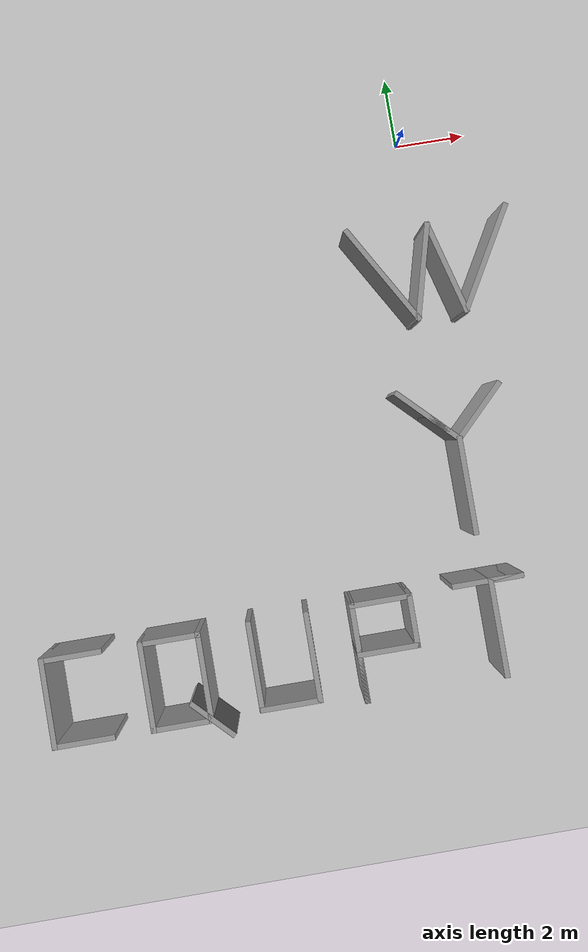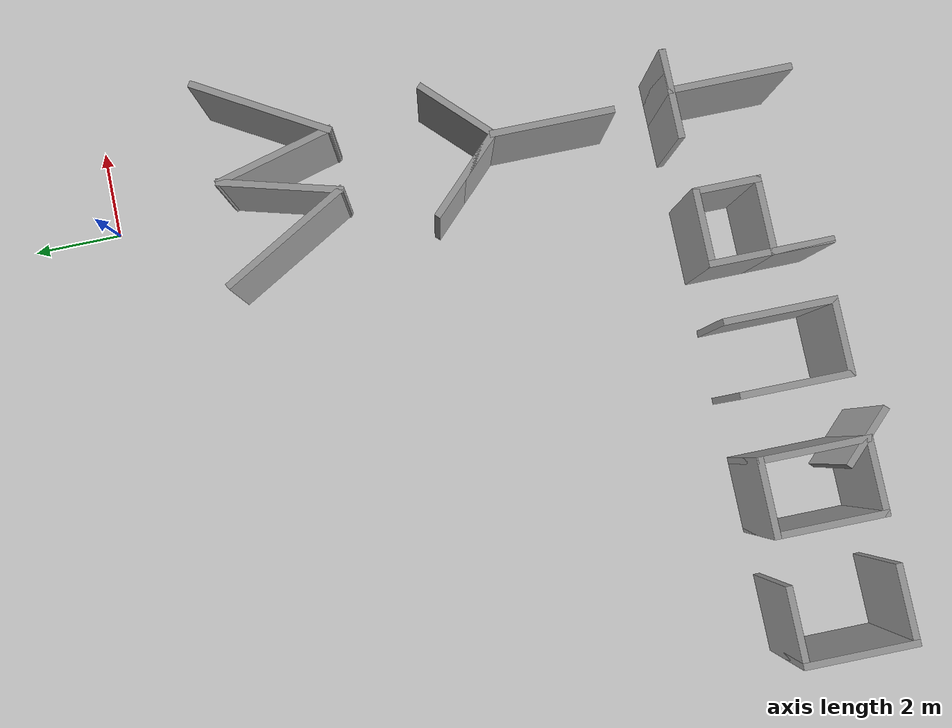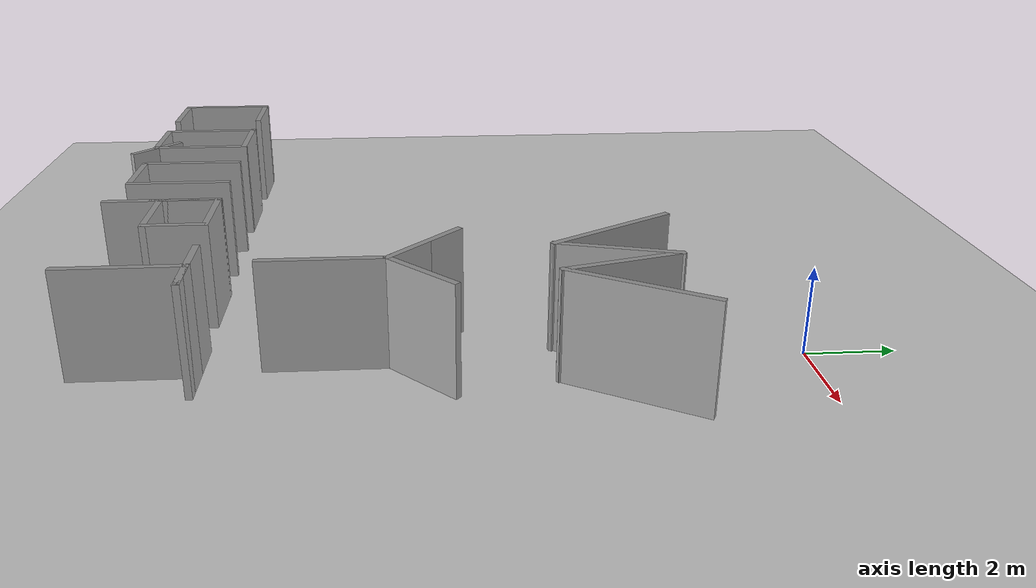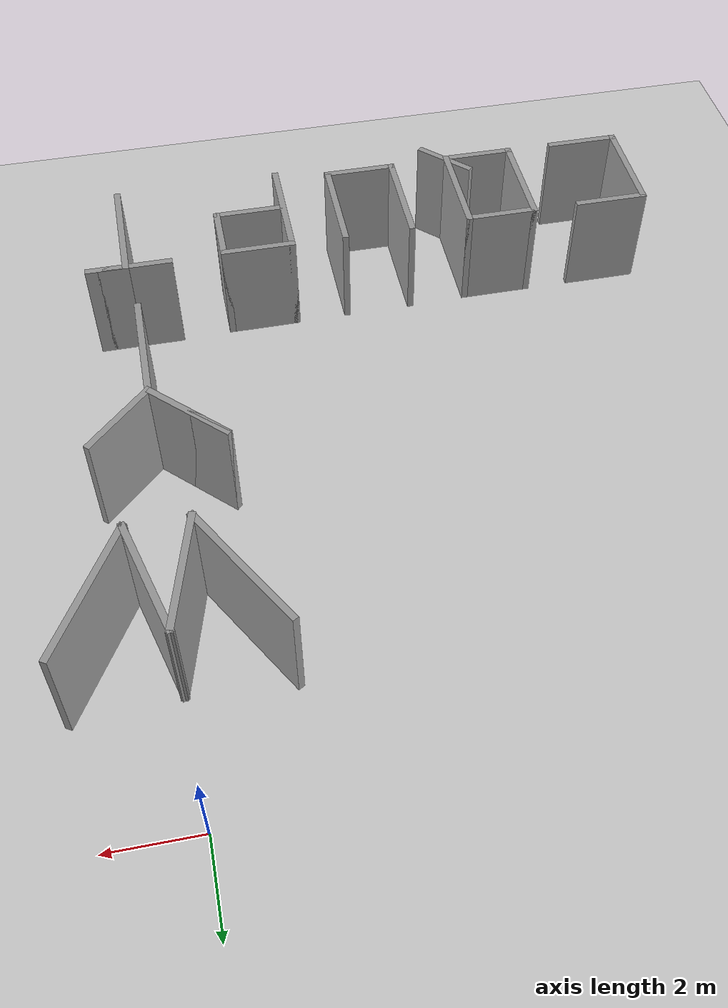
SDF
<sdf version="1.7">
 <world name="default">
  <light name="sun" type="directional">
   <pose>0 0 10 0 -0 0</pose>
   <diffuse>0.8 0.8 0.8 1</diffuse>
   <specular>0.2 0.2 0.2 1</specular>
   <attenuation>
    <range>1000</range>
    <constant>0.9</constant>
    <linear>0.01</linear>
    <quadratic>0.001</quadratic>
   </attenuation>
   <direction>-0.5 0.1 -0.9</direction>
   <spot><inner_angle>0</inner_angle><outer_angle>0</outer_angle><falloff>0</falloff></spot>
  </light>
  <model name="ground_plane">
   <static>1</static>
   <link name="link">
    <collision name="collision">
     <geometry><plane><normal>0 0 1</normal><size>100 100</size></plane></geometry>
     <surface><friction><ode><mu>100</mu><mu2>50</mu2></ode></friction></surface>
    </collision>
    <visual name="visual">
     <cast_shadows>0</cast_shadows>
     <geometry><plane><normal>0 0 1</normal><size>100 100</size></plane></geometry>
     <material>
      <script><uri>file://media/materials/scripts/gazebo.material</uri><name>Gazebo/Grey</name></script>
     </material>
    </visual>
   </link>
  </model>
  <gravity>0 0 -9.8</gravity>
  <magnetic_field>6e-06 2.3e-05 -4.2e-05</magnetic_field>
  <atmosphere type="adiabatic"/>
  <physics type="ode">
   <max_step_size>0.001</max_step_size>
   <real_time_factor>1</real_time_factor>
   <real_time_update_rate>1000</real_time_update_rate>
  </physics>
  <scene><ambient>0.4 0.4 0.4 1</ambient><background>0.7 0.7 0.7 1</background><shadows>1</shadows></scene>
  <audio><device>default</device></audio>
  <spherical_coordinates>
   <surface_model>EARTH_WGS84</surface_model>
   <latitude_deg>0</latitude_deg>
   <longitude_deg>0</longitude_deg>
   <elevation>0</elevation>
   <heading_deg>0</heading_deg>
  </spherical_coordinates>
  <model name="Untitled1">
   <pose>-4.96069 -7.90908 0 0 -0 0</pose>
   <link name="Wall_33">
    <collision name="Wall_33_Collision">
     <geometry><box><size>1.75 0.15 2.5</size></box></geometry>
     <pose>0 0 1.25 0 -0 0</pose>
    </collision>
    <visual name="Wall_33_Visual">
     <pose>0 0 1.25 0 -0 0</pose>
     <geometry><box><size>1.75 0.15 2.5</size></box></geometry>
     <material>
      <script><uri>file://media/materials/scripts/gazebo.material</uri><name>Gazebo/Grey</name></script>
      <ambient>1 1 1 1</ambient>
     </material>
     <meta><layer>0</layer></meta>
    </visual>
    <pose>-6.54323 -4.99798 0 0 -0 0</pose>
   </link>
   <link name="Wall_35">
    <collision name="Wall_35_Collision">
     <geometry><box><size>2.5 0.15 2.5</size></box></geometry>
     <pose>0 0 1.25 0 -0 0</pose>
    </collision>
    <visual name="Wall_35_Visual">
     <pose>0 0 1.25 0 -0 0</pose>
     <geometry><box><size>2.5 0.15 2.5</size></box></geometry>
     <material>
      <script><uri>file://media/materials/scripts/gazebo.material</uri><name>Gazebo/Grey</name></script>
      <ambient>1 1 1 1</ambient>
     </material>
     <meta><layer>0</layer></meta>
    </visual>
    <pose>-7.34323 -6.17298 0 0 -0 -1.5708</pose>
   </link>
   <link name="Wall_36">
    <collision name="Wall_36_Collision">
     <geometry><box><size>1.75 0.15 2.5</size></box></geometry>
     <pose>0 0 1.25 0 -0 0</pose>
    </collision>
    <visual name="Wall_36_Visual">
     <pose>0 0 1.25 0 -0 0</pose>
     <geometry><box><size>1.75 0.15 2.5</size></box></geometry>
     <material>
      <script><uri>file://media/materials/scripts/gazebo.material</uri><name>Gazebo/Grey</name></script>
      <ambient>1 1 1 1</ambient>
     </material>
     <meta><layer>0</layer></meta>
    </visual>
    <pose>-6.54323 -7.34797 0 0 -0 0</pose>
   </link>
   <link name="Wall_38">
    <collision name="Wall_38_Collision">
     <geometry><box><size>1.75 0.15 2.5</size></box></geometry>
     <pose>0 0 1.25 0 -0 0</pose>
    </collision>
    <visual name="Wall_38_Visual">
     <pose>0 0 1.25 0 -0 0</pose>
     <geometry><box><size>1.75 0.15 2.5</size></box></geometry>
     <material>
      <script><uri>file://media/materials/scripts/gazebo.material</uri><name>Gazebo/Grey</name></script>
      <ambient>1 1 1 1</ambient>
     </material>
     <meta><layer>0</layer></meta>
    </visual>
    <pose>-3.81382 -4.99798 0 0 -0 0</pose>
   </link>
   <link name="Wall_39">
    <collision name="Wall_39_Collision">
     <geometry><box><size>2.5 0.15 2.5</size></box></geometry>
     <pose>0 0 1.25 0 -0 0</pose>
    </collision>
    <visual name="Wall_39_Visual">
     <pose>0 0 1.25 0 -0 0</pose>
     <geometry><box><size>2.5 0.15 2.5</size></box></geometry>
     <material>
      <script><uri>file://media/materials/scripts/gazebo.material</uri><name>Gazebo/Grey</name></script>
      <ambient>1 1 1 1</ambient>
     </material>
     <meta><layer>0</layer></meta>
    </visual>
    <pose>-3.01382 -6.17298 0 0 -0 -1.5708</pose>
   </link>
   <link name="Wall_40">
    <collision name="Wall_40_Collision">
     <geometry><box><size>1.75 0.15 2.5</size></box></geometry>
     <pose>0 0 1.25 0 -0 0</pose>
    </collision>
    <visual name="Wall_40_Visual">
     <pose>0 0 1.25 0 -0 0</pose>
     <geometry><box><size>1.75 0.15 2.5</size></box></geometry>
     <material>
      <script><uri>file://media/materials/scripts/gazebo.material</uri><name>Gazebo/Grey</name></script>
      <ambient>1 1 1 1</ambient>
     </material>
     <meta><layer>0</layer></meta>
    </visual>
    <pose>-3.81382 -7.34797 0 0 -0 3.14159</pose>
   </link>
   <link name="Wall_41">
    <collision name="Wall_41_Collision">
     <geometry><box><size>2.5 0.15 2.5</size></box></geometry>
     <pose>0 0 1.25 0 -0 0</pose>
    </collision>
    <visual name="Wall_41_Visual">
     <pose>0 0 1.25 0 -0 0</pose>
     <geometry><box><size>2.5 0.15 2.5</size></box></geometry>
     <material>
      <script><uri>file://media/materials/scripts/gazebo.material</uri><name>Gazebo/Grey</name></script>
      <ambient>1 1 1 1</ambient>
     </material>
     <meta><layer>0</layer></meta>
    </visual>
    <pose>-4.61382 -6.17298 0 0 -0 1.5708</pose>
   </link>
   <link name="Wall_43">
    <collision name="Wall_43_Collision">
     <geometry><box><size>1.5 0.15 2.5</size></box></geometry>
     <pose>0 0 1.25 0 -0 0</pose>
    </collision>
    <visual name="Wall_43_Visual">
     <pose>0 0 1.25 0 -0 0</pose>
     <geometry><box><size>1.5 0.15 2.5</size></box></geometry>
     <material>
      <script><uri>file://media/materials/scripts/gazebo.material</uri><name>Gazebo/Grey</name></script>
      <ambient>1 1 1 1</ambient>
     </material>
     <meta><layer>0</layer></meta>
    </visual>
    <pose>-2.97999 -7.32572 0 0 -0 -0.785398</pose>
   </link>
   <link name="Wall_45">
    <collision name="Wall_45_Collision">
     <geometry><box><size>2.5 0.15 2.5</size></box></geometry>
     <pose>0 0 1.25 0 -0 0</pose>
    </collision>
    <visual name="Wall_45_Visual">
     <pose>0 0 1.25 0 -0 0</pose>
     <geometry><box><size>2.5 0.15 2.5</size></box></geometry>
     <material>
      <script><uri>file://media/materials/scripts/gazebo.material</uri><name>Gazebo/Grey</name></script>
      <ambient>1 1 1 1</ambient>
     </material>
     <meta><layer>0</layer></meta>
    </visual>
    <pose>-1.60684 -6.12671 0 0 -0 -1.5708</pose>
   </link>
   <link name="Wall_46">
    <collision name="Wall_46_Collision">
     <geometry><box><size>1.75 0.15 2.5</size></box></geometry>
     <pose>0 0 1.25 0 -0 0</pose>
    </collision>
    <visual name="Wall_46_Visual">
     <pose>0 0 1.25 0 -0 0</pose>
     <geometry><box><size>1.75 0.15 2.5</size></box></geometry>
     <material>
      <script><uri>file://media/materials/scripts/gazebo.material</uri><name>Gazebo/Grey</name></script>
      <ambient>1 1 1 1</ambient>
     </material>
     <meta><layer>0</layer></meta>
    </visual>
    <pose>-0.806841 -7.30171 0 0 -0 0</pose>
   </link>
   <link name="Wall_47">
    <collision name="Wall_47_Collision">
     <geometry><box><size>2.5 0.15 2.5</size></box></geometry>
     <pose>0 0 1.25 0 -0 0</pose>
    </collision>
    <visual name="Wall_47_Visual">
     <pose>0 0 1.25 0 -0 0</pose>
     <geometry><box><size>2.5 0.15 2.5</size></box></geometry>
     <material>
      <script><uri>file://media/materials/scripts/gazebo.material</uri><name>Gazebo/Grey</name></script>
      <ambient>1 1 1 1</ambient>
     </material>
     <meta><layer>0</layer></meta>
    </visual>
    <pose>-0.006841 -6.12671 0 0 -0 1.5708</pose>
   </link>
   <link name="Wall_49">
    <collision name="Wall_49_Collision">
     <geometry><box><size>2.75 0.15 2.5</size></box></geometry>
     <pose>0 0 1.25 0 -0 0</pose>
    </collision>
    <visual name="Wall_49_Visual">
     <pose>0 0 1.25 0 -0 0</pose>
     <geometry><box><size>2.75 0.15 2.5</size></box></geometry>
     <material>
      <script><uri>file://media/materials/scripts/gazebo.material</uri><name>Gazebo/Grey</name></script>
      <ambient>1 1 1 1</ambient>
     </material>
     <meta><layer>0</layer></meta>
    </visual>
    <pose>1.26135 -6.22858 0 0 -0 -1.5708</pose>
   </link>
   <link name="Wall_50">
    <collision name="Wall_50_Collision">
     <geometry><box><size>2.75 0.15 2.5</size></box></geometry>
     <pose>0 0 1.25 0 -0 0</pose>
    </collision>
    <visual name="Wall_50_Visual">
     <pose>0 0 1.25 0 -0 0</pose>
     <geometry><box><size>2.75 0.15 2.5</size></box></geometry>
     <material>
      <script><uri>file://media/materials/scripts/gazebo.material</uri><name>Gazebo/Grey</name></script>
      <ambient>1 1 1 1</ambient>
     </material>
     <meta><layer>0</layer></meta>
    </visual>
    <pose>1.26135 -6.22858 0 0 -0 1.5708</pose>
   </link>
   <link name="Wall_51">
    <collision name="Wall_51_Collision">
     <geometry><box><size>1.75 0.15 2.5</size></box></geometry>
     <pose>0 0 1.25 0 -0 0</pose>
    </collision>
    <visual name="Wall_51_Visual">
     <pose>0 0 1.25 0 -0 0</pose>
     <geometry><box><size>1.75 0.15 2.5</size></box></geometry>
     <material>
      <script><uri>file://media/materials/scripts/gazebo.material</uri><name>Gazebo/Grey</name></script>
      <ambient>1 1 1 1</ambient>
     </material>
     <meta><layer>0</layer></meta>
    </visual>
    <pose>2.06135 -4.92858 0 0 -0 0</pose>
   </link>
   <link name="Wall_52">
    <collision name="Wall_52_Collision">
     <geometry><box><size>1.5 0.15 2.5</size></box></geometry>
     <pose>0 0 1.25 0 -0 0</pose>
    </collision>
    <visual name="Wall_52_Visual">
     <pose>0 0 1.25 0 -0 0</pose>
     <geometry><box><size>1.5 0.15 2.5</size></box></geometry>
     <material>
      <script><uri>file://media/materials/scripts/gazebo.material</uri><name>Gazebo/Grey</name></script>
      <ambient>1 1 1 1</ambient>
     </material>
     <meta><layer>0</layer></meta>
    </visual>
    <pose>2.86135 -5.60358 0 0 -0 -1.5708</pose>
   </link>
   <link name="Wall_53">
    <collision name="Wall_53_Collision">
     <geometry><box><size>1.75 0.15 2.5</size></box></geometry>
     <pose>0 0 1.25 0 -0 0</pose>
    </collision>
    <visual name="Wall_53_Visual">
     <pose>0 0 1.25 0 -0 0</pose>
     <geometry><box><size>1.75 0.15 2.5</size></box></geometry>
     <material>
      <script><uri>file://media/materials/scripts/gazebo.material</uri><name>Gazebo/Grey</name></script>
      <ambient>1 1 1 1</ambient>
     </material>
     <meta><layer>0</layer></meta>
    </visual>
    <pose>2.06135 -6.27858 0 0 -0 3.14159</pose>
   </link>
   <link name="Wall_55">
    <collision name="Wall_55_Collision">
     <geometry><box><size>2 0.15 2.5</size></box></geometry>
     <pose>0 0 1.25 0 -0 0</pose>
    </collision>
    <visual name="Wall_55_Visual">
     <pose>0 0 1.25 0 -0 0</pose>
     <geometry><box><size>2 0.15 2.5</size></box></geometry>
     <material>
      <script><uri>file://media/materials/scripts/gazebo.material</uri><name>Gazebo/Grey</name></script>
      <ambient>1 1 1 1</ambient>
     </material>
     <meta><layer>0</layer></meta>
    </visual>
    <pose>5.05455 -4.88232 0 0 -0 0</pose>
   </link>
   <link name="Wall_56">
    <collision name="Wall_56_Collision">
     <geometry><box><size>1 0.15 2.5</size></box></geometry>
     <pose>0 0 1.25 0 -0 0</pose>
    </collision>
    <visual name="Wall_56_Visual">
     <pose>0 0 1.25 0 -0 0</pose>
     <geometry><box><size>1 0.15 2.5</size></box></geometry>
     <material>
      <script><uri>file://media/materials/scripts/gazebo.material</uri><name>Gazebo/Grey</name></script>
      <ambient>1 1 1 1</ambient>
     </material>
     <meta><layer>0</layer></meta>
    </visual>
    <pose>5.55455 -4.88232 0 0 -0 3.14159</pose>
   </link>
   <link name="Wall_57">
    <collision name="Wall_57_Collision">
     <geometry><box><size>2.75 0.15 2.5</size></box></geometry>
     <pose>0 0 1.25 0 -0 0</pose>
    </collision>
    <visual name="Wall_57_Visual">
     <pose>0 0 1.25 0 -0 0</pose>
     <geometry><box><size>2.75 0.15 2.5</size></box></geometry>
     <material>
      <script><uri>file://media/materials/scripts/gazebo.material</uri><name>Gazebo/Grey</name></script>
      <ambient>1 1 1 1</ambient>
     </material>
     <meta><layer>0</layer></meta>
    </visual>
    <pose>5.12955 -6.18232 0 0 -0 -1.5708</pose>
   </link>
   <link name="Wall_59">
    <collision name="Wall_59_Collision">
     <geometry><box><size>2.75 0.15 2.5</size></box></geometry>
     <pose>0 0 1.25 0 -0 0</pose>
    </collision>
    <visual name="Wall_59_Visual">
     <pose>0 0 1.25 0 -0 0</pose>
     <geometry><box><size>2.75 0.15 2.5</size></box></geometry>
     <material>
      <script><uri>file://media/materials/scripts/gazebo.material</uri><name>Gazebo/Grey</name></script>
      <ambient>1 1 1 1</ambient>
     </material>
     <meta><layer>0</layer></meta>
    </visual>
    <pose>4.9635 -2.22636 0 0 -0 1.5708</pose>
   </link>
   <link name="Wall_60">
    <collision name="Wall_60_Collision">
     <geometry><box><size>2.25 0.15 2.5</size></box></geometry>
     <pose>0 0 1.25 0 -0 0</pose>
    </collision>
    <visual name="Wall_60_Visual">
     <pose>0 0 1.25 0 -0 0</pose>
     <geometry><box><size>2.25 0.15 2.5</size></box></geometry>
     <material>
      <script><uri>file://media/materials/scripts/gazebo.material</uri><name>Gazebo/Grey</name></script>
      <ambient>1 1 1 1</ambient>
     </material>
     <meta><layer>0</layer></meta>
    </visual>
    <pose>4.22103 -0.183896 0 0 -0 2.35619</pose>
   </link>
   <link name="Wall_61">
    <collision name="Wall_61_Collision">
     <geometry><box><size>2.25 0.15 2.5</size></box></geometry>
     <pose>0 0 1.25 0 -0 0</pose>
    </collision>
    <visual name="Wall_61_Visual">
     <pose>0 0 1.25 0 -0 0</pose>
     <geometry><box><size>2.25 0.15 2.5</size></box></geometry>
     <material>
      <script><uri>file://media/materials/scripts/gazebo.material</uri><name>Gazebo/Grey</name></script>
      <ambient>1 1 1 1</ambient>
     </material>
     <meta><layer>0</layer></meta>
    </visual>
    <pose>4.22103 -0.183896 0 0 -0 -0.785398</pose>
   </link>
   <link name="Wall_62">
    <collision name="Wall_62_Collision">
     <geometry><box><size>2 0.15 2.5</size></box></geometry>
     <pose>0 0 1.25 0 -0 0</pose>
    </collision>
    <visual name="Wall_62_Visual">
     <pose>0 0 1.25 0 -0 0</pose>
     <geometry><box><size>2 0.15 2.5</size></box></geometry>
     <material>
      <script><uri>file://media/materials/scripts/gazebo.material</uri><name>Gazebo/Grey</name></script>
      <ambient>1 1 1 1</ambient>
     </material>
     <meta><layer>0</layer></meta>
    </visual>
    <pose>5.61757 -0.272284 0 0 -0 0.785398</pose>
   </link>
   <link name="Wall_64">
    <collision name="Wall_64_Collision">
     <geometry><box><size>3.25 0.15 2.5</size></box></geometry>
     <pose>0 0 1.25 0 -0 0</pose>
    </collision>
    <visual name="Wall_64_Visual">
     <pose>0 0 1.25 0 -0 0</pose>
     <geometry><box><size>3.25 0.15 2.5</size></box></geometry>
     <material>
      <script><uri>file://media/materials/scripts/gazebo.material</uri><name>Gazebo/Grey</name></script>
      <ambient>1 1 1 1</ambient>
     </material>
     <meta><layer>0</layer></meta>
    </visual>
    <pose>3.64492 3.8778 0 0 -0 -1.0472</pose>
   </link>
   <link name="Wall_65">
    <collision name="Wall_65_Collision">
     <geometry><box><size>2.75 0.15 2.5</size></box></geometry>
     <pose>0 0 1.25 0 -0 0</pose>
    </collision>
    <visual name="Wall_65_Visual">
     <pose>0 0 1.25 0 -0 0</pose>
     <geometry><box><size>2.75 0.15 2.5</size></box></geometry>
     <material>
      <script><uri>file://media/materials/scripts/gazebo.material</uri><name>Gazebo/Grey</name></script>
      <ambient>1 1 1 1</ambient>
     </material>
     <meta><layer>0</layer></meta>
    </visual>
    <pose>4.75638 3.79116 0 0 -0 1.309</pose>
   </link>
   <link name="Wall_66">
    <collision name="Wall_66_Collision">
     <geometry><box><size>2.75 0.15 2.5</size></box></geometry>
     <pose>0 0 1.25 0 -0 0</pose>
    </collision>
    <visual name="Wall_66_Visual">
     <pose>0 0 1.25 0 -0 0</pose>
     <geometry><box><size>2.75 0.15 2.5</size></box></geometry>
     <material>
      <script><uri>file://media/materials/scripts/gazebo.material</uri><name>Gazebo/Grey</name></script>
      <ambient>1 1 1 1</ambient>
     </material>
     <meta><layer>0</layer></meta>
    </visual>
    <pose>5.42931 3.79116 0 0 -0 -1.309</pose>
   </link>
   <link name="Wall_67">
    <collision name="Wall_67_Collision">
     <geometry><box><size>3.25 0.15 2.5</size></box></geometry>
     <pose>0 0 1.25 0 -0 0</pose>
    </collision>
    <visual name="Wall_67_Visual">
     <pose>0 0 1.25 0 -0 0</pose>
     <geometry><box><size>3.25 0.15 2.5</size></box></geometry>
     <material>
      <script><uri>file://media/materials/scripts/gazebo.material</uri><name>Gazebo/Grey</name></script>
      <ambient>1 1 1 1</ambient>
     </material>
     <meta><layer>0</layer></meta>
    </visual>
    <pose>6.54078 3.8778 0 0 -0 1.0472</pose>
   </link>
   <static>1</static>
  </model>
 </world>
</sdf>
